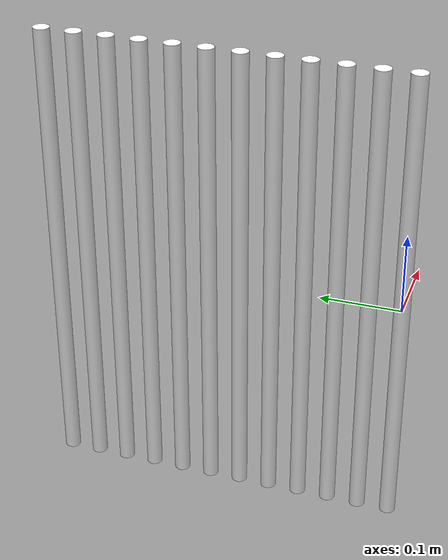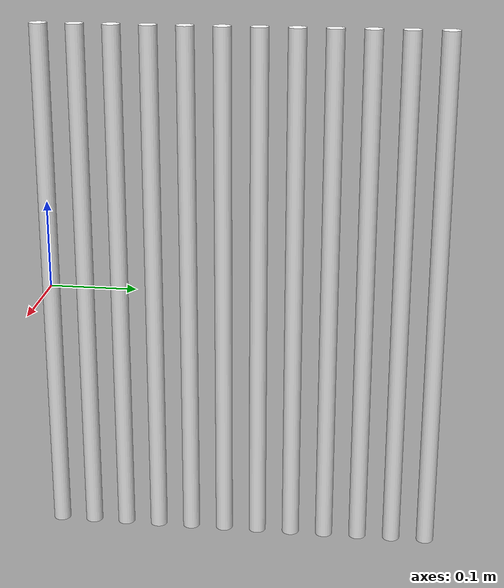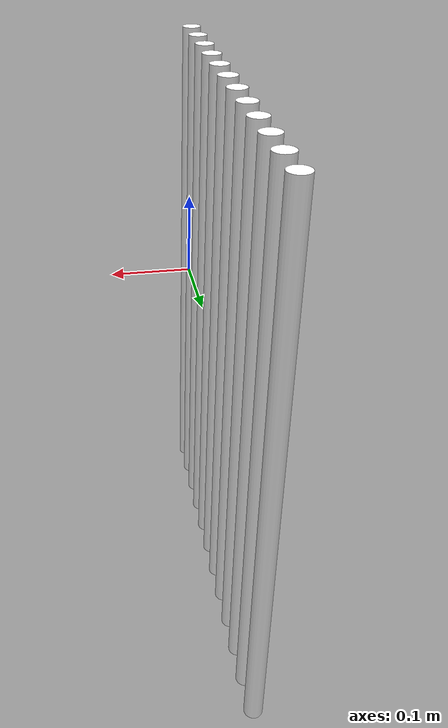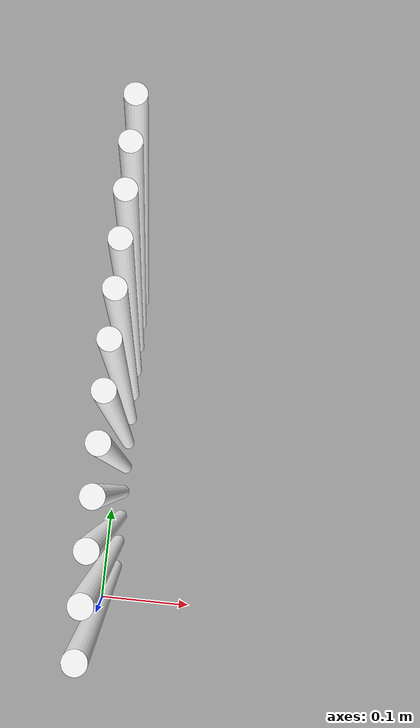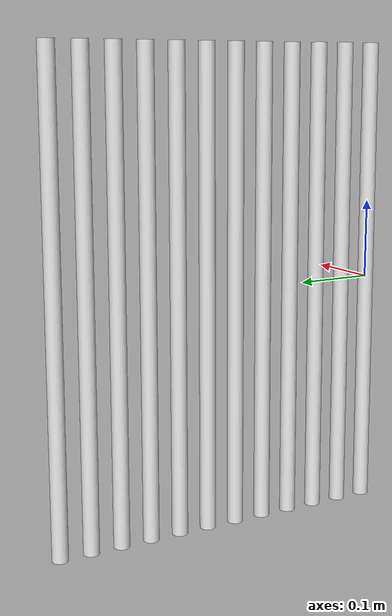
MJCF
<mujoco model="cloth">
  <worldbody>
    <body>
        <body name="object">
        	<inertial pos="0.0 0 0" mass="1.0" diaginertia="1 1 1" />
        	<joint armature="0" damping="0" limited="false" name="root" pos="0 0 0" stiffness="0" type="free"/>
        	<body name="object2">
				<geom size="0.01 0.3" pos="0 0 0" friction="100" type="cylinder" rgba="1 1 1 1" group="0"/>
				<joint type="hinge" pos="0 0.04 0" damping="0.1" range="-45 45" axis="0 0 1"/>
		    		<body name="object3">
					<geom size="0.01 0.3" pos="0 0.04 0" type="cylinder" rgba="1 1 1 1" group="0"/>
					<joint type="hinge" pos="0 0.08 0" damping="0.1" range="-45 45" axis="0 0 1"/>
					<body name="object4">
						<geom size="0.01 0.3" pos="0 0.08 0" type="cylinder" rgba="1 1 1 1" group="0"/>
						<joint type="hinge" pos="0 0.12 0" damping="0.1" range="-45 45" axis="0 0 1"/>
						<body name="object5">
							<geom size="0.01 0.3" pos="0 0.12 0" type="cylinder" rgba="1 1 1 1" group="0"/>
							<joint type="hinge" pos="0 0.16 0" damping="0.1" range="-45 45" axis="0 0 1"/>
							<body name="object6">
								<geom size="0.01 0.3" pos="0 0.16 0" type="cylinder" rgba="1 1 1 1" group="0"/>
								<joint type="hinge" pos="0 0.20 0" damping="0.1" range="-45 45" axis="0 0 1"/>
								<body name="object7">
									<geom size="0.01 0.3" pos="0 0.20 0" type="cylinder" rgba="1 1 1 1" group="0"/>
									<joint type="hinge" pos="0 0.24 0" damping="0.1" range="-45 45" axis="0 0 1"/>
									<body name="object8">
										<geom size="0.01 0.3" pos="0 0.24 0" type="cylinder" rgba="1 1 1 1" group="0"/>
										<joint type="hinge" pos="0 0.28 0" damping="0.1" range="-45 45" axis="0 0 1"/>
										<body name="object9">
											<geom size="0.01 0.3" pos="0 0.28 0" type="cylinder" rgba="1 1 1 1" group="0"/>
											<joint type="hinge" pos="0 0.32 0" damping="0.1" range="-45 45" axis="0 0 1"/>
											<body name="object10">
												<geom size="0.01 0.3" pos="0 0.32 0" type="cylinder" rgba="1 1 1 1" group="0"/>
												<joint type="hinge" pos="0 0.36 0" damping="0.1" range="-45 45" axis="0 0 1"/>
												<body name="object11">
													<geom size="0.01 0.3" pos="0 0.36 0" type="cylinder" rgba="1 1 1 1" group="0"/>
													<joint type="hinge" pos="0 0.40 0" damping="0.1" range="-45 45" axis="0 0 1"/>
													<body name="object12">
														<geom size="0.01 0.3" pos="0 0.40 0" type="cylinder" rgba="1 1 1 1" group="0"/>
														<joint type="hinge" pos="0 0.44 0" damping="0.1" range="-45 45" axis="0 0 1"/>
														<geom size="0.01 0.3" pos="0 0.44 0" type="cylinder" rgba="1 1 1 1" group="0"/>
													</body>
												</body>
											</body>
										</body>
									</body>
								</body>
							</body>
						</body>
					</body>
				</body>
			</body>
        </body>
        <site name="bottom_site" rgba="0 0 0 0" size="0.005"/>
        <site name="top_site" rgba="0 0 0 0" size="0.005"/>
        <site name="horizontal_radius_site" rgba="0 0 0 0" size="0.1"/>
    </body>
  </worldbody>
</mujoco>
